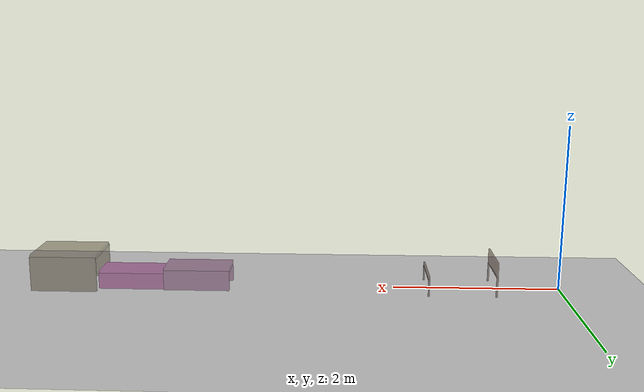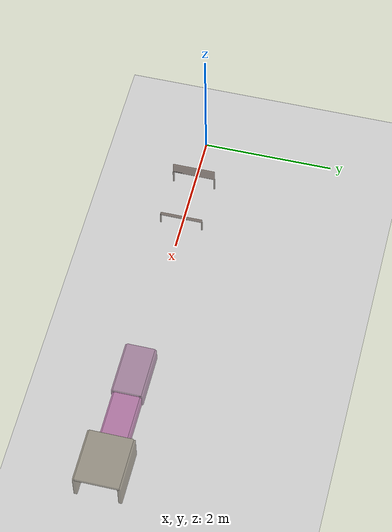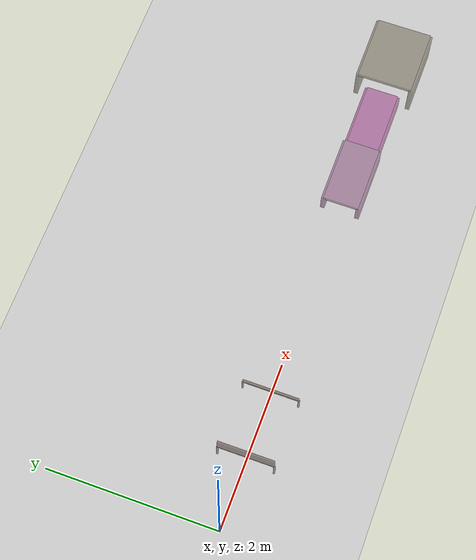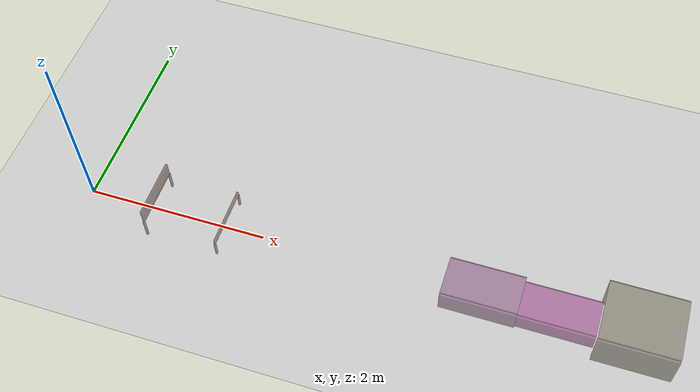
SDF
<sdf version="1.8">
 <world name="friction_world">
  <model name="ground_plane">
   <static>true</static>
   <link name="link">
    <collision name="collision">
     <geometry><plane><normal>0 0 1</normal><size>100 100</size></plane></geometry>
     <surface><friction><ode><mu>0.7</mu><mu2>0.7</mu2></ode></friction></surface>
    </collision>
    <visual name="visual">
     <geometry><plane><normal>0 0 1</normal><size>100 100</size></plane></geometry>
     <material><ambient>0.8 0.8 0.8 1</ambient><diffuse>0.8 0.8 0.8 1</diffuse></material>
    </visual>
   </link>
  </model>
  <model name="cave_m6_both_moderate">
   <static>true</static>
   <link name="ceiling">
    <pose>4.4 0 0.24 0 0 0</pose>
    <collision name="c"><geometry><box><size>0.8 0.42 0.05</size></box></geometry></collision>
    <visual name="v">
     <geometry><box><size>0.8 0.42 0.05</size></box></geometry>
     <material><ambient>0.5 0.25 0.45 0.5</ambient></material>
     <transparency>0.2</transparency>
    </visual>
   </link>
   <link name="left_wall">
    <pose>4.4 -0.21 0.12 0 0 0</pose>
    <collision name="c"><geometry><box><size>0.8 0.05 0.24</size></box></geometry></collision>
    <visual name="v">
     <geometry><box><size>0.8 0.05 0.24</size></box></geometry>
     <material><ambient>0.44 0.22 0.396 0.5</ambient></material>
     <transparency>0.2</transparency>
    </visual>
   </link>
   <link name="right_wall">
    <pose>4.4 0.21 0.12 0 0 0</pose>
    <collision name="c"><geometry><box><size>0.8 0.05 0.24</size></box></geometry></collision>
    <visual name="v">
     <geometry><box><size>0.8 0.05 0.24</size></box></geometry>
     <material><ambient>0.44 0.22 0.396 0.5</ambient></material>
     <transparency>0.2</transparency>
    </visual>
   </link>
  </model>
  <model name="cave_m7_both_extreme">
   <static>true</static>
   <link name="ceiling">
    <pose>5.200000000000001 0 0.19 0 0 0</pose>
    <collision name="c"><geometry><box><size>0.8 0.38 0.05</size></box></geometry></collision>
    <visual name="v">
     <geometry><box><size>0.8 0.38 0.05</size></box></geometry>
     <material><ambient>0.6 0.15 0.5 0.5</ambient></material>
     <transparency>0.2</transparency>
    </visual>
   </link>
   <link name="left_wall">
    <pose>5.200000000000001 -0.19 0.095 0 0 0</pose>
    <collision name="c"><geometry><box><size>0.8 0.05 0.19</size></box></geometry></collision>
    <visual name="v">
     <geometry><box><size>0.8 0.05 0.19</size></box></geometry>
     <material><ambient>0.528 0.132 0.44 0.5</ambient></material>
     <transparency>0.2</transparency>
    </visual>
   </link>
   <link name="right_wall">
    <pose>5.200000000000001 0.19 0.095 0 0 0</pose>
    <collision name="c"><geometry><box><size>0.8 0.05 0.19</size></box></geometry></collision>
    <visual name="v">
     <geometry><box><size>0.8 0.05 0.19</size></box></geometry>
     <material><ambient>0.528 0.132 0.44 0.5</ambient></material>
     <transparency>0.2</transparency>
    </visual>
   </link>
  </model>
  <model name="cave_m8_normal_exit">
   <static>true</static>
   <link name="ceiling">
    <pose>6.000000000000001 0 0.42 0 0 0</pose>
    <collision name="c"><geometry><box><size>0.8 0.65 0.05</size></box></geometry></collision>
    <visual name="v">
     <geometry><box><size>0.8 0.65 0.05</size></box></geometry>
     <material><ambient>0.4 0.35 0.25 0.5</ambient></material>
     <transparency>0.2</transparency>
    </visual>
   </link>
   <link name="left_wall">
    <pose>6.000000000000001 -0.325 0.21 0 0 0</pose>
    <collision name="c"><geometry><box><size>0.8 0.05 0.42</size></box></geometry></collision>
    <visual name="v">
     <geometry><box><size>0.8 0.05 0.42</size></box></geometry>
     <material><ambient>0.35200000000000004 0.308 0.22 0.5</ambient></material>
     <transparency>0.2</transparency>
    </visual>
   </link>
   <link name="right_wall">
    <pose>6.000000000000001 0.325 0.21 0 0 0</pose>
    <collision name="c"><geometry><box><size>0.8 0.05 0.42</size></box></geometry></collision>
    <visual name="v">
     <geometry><box><size>0.8 0.05 0.42</size></box></geometry>
     <material><ambient>0.35200000000000004 0.308 0.22 0.5</ambient></material>
     <transparency>0.2</transparency>
    </visual>
   </link>
  </model>
  <model name="cap_b1">
   <static>true</static>
   <link name="ceiling_cap">
    <pose>0.8 0 0.25 0 0 0</pose>
    <collision name="c"><geometry><box><size>0.02 0.65 0.02</size></box></geometry></collision>
    <visual name="v">
     <geometry><box><size>0.02 0.65 0.02</size></box></geometry>
     <material><ambient>0.2 0.15 0.1 0.5</ambient></material>
     <transparency>0.2</transparency>
    </visual>
   </link>
   <link name="height_step">
    <pose>0.8 0 0.32999999999999996 0 0 0</pose>
    <collision name="c"><geometry><box><size>0.02 0.65 0.18</size></box></geometry></collision>
    <visual name="v">
     <geometry><box><size>0.02 0.65 0.18</size></box></geometry>
     <material><ambient>0.28 0.18 0.12 0.5</ambient></material>
     <transparency>0.2</transparency>
    </visual>
   </link>
   <link name="left_cap">
    <pose>0.8 -0.325 0.12 0 0 0</pose>
    <collision name="c"><geometry><box><size>0.02 0.02 0.24</size></box></geometry></collision>
    <visual name="v">
     <geometry><box><size>0.02 0.02 0.24</size></box></geometry>
     <material><ambient>0.25 0.2 0.15 0.5</ambient></material>
     <transparency>0.2</transparency>
    </visual>
   </link>
   <link name="right_cap">
    <pose>0.8 0.325 0.12 0 0 0</pose>
    <collision name="c"><geometry><box><size>0.02 0.02 0.24</size></box></geometry></collision>
    <visual name="v">
     <geometry><box><size>0.02 0.02 0.24</size></box></geometry>
     <material><ambient>0.25 0.2 0.15 0.5</ambient></material>
     <transparency>0.2</transparency>
    </visual>
   </link>
  </model>
  <model name="cap_b2">
   <static>true</static>
   <link name="ceiling_cap">
    <pose>1.6 0 0.2 0 0 0</pose>
    <collision name="c"><geometry><box><size>0.02 0.65 0.02</size></box></geometry></collision>
    <visual name="v">
     <geometry><box><size>0.02 0.65 0.02</size></box></geometry>
     <material><ambient>0.2 0.15 0.1 0.5</ambient></material>
     <transparency>0.2</transparency>
    </visual>
   </link>
   <link name="height_step">
    <pose>1.6 0 0.215 0 0 0</pose>
    <collision name="c"><geometry><box><size>0.02 0.65 0.04999999999999999</size></box></geometry></collision>
    <visual name="v">
     <geometry><box><size>0.02 0.65 0.04999999999999999</size></box></geometry>
     <material><ambient>0.28 0.18 0.12 0.5</ambient></material>
     <transparency>0.2</transparency>
    </visual>
   </link>
   <link name="left_cap">
    <pose>1.6 -0.325 0.095 0 0 0</pose>
    <collision name="c"><geometry><box><size>0.02 0.02 0.19</size></box></geometry></collision>
    <visual name="v">
     <geometry><box><size>0.02 0.02 0.19</size></box></geometry>
     <material><ambient>0.25 0.2 0.15 0.5</ambient></material>
     <transparency>0.2</transparency>
    </visual>
   </link>
   <link name="right_cap">
    <pose>1.6 0.325 0.095 0 0 0</pose>
    <collision name="c"><geometry><box><size>0.02 0.02 0.19</size></box></geometry></collision>
    <visual name="v">
     <geometry><box><size>0.02 0.02 0.19</size></box></geometry>
     <material><ambient>0.25 0.2 0.15 0.5</ambient></material>
     <transparency>0.2</transparency>
    </visual>
   </link>
  </model>
 </world>
</sdf>
